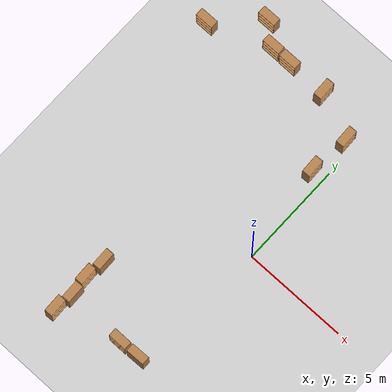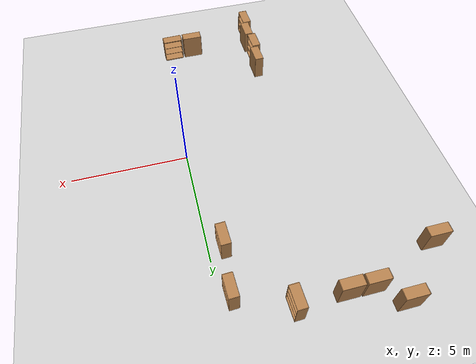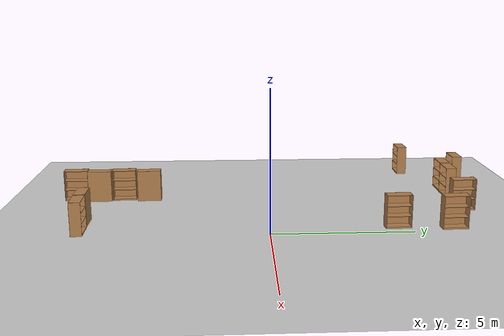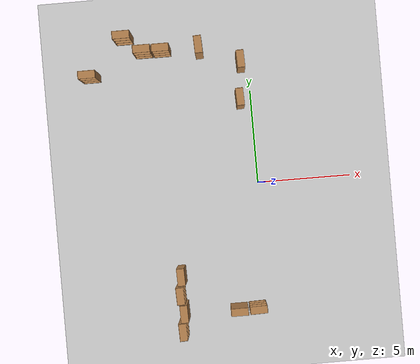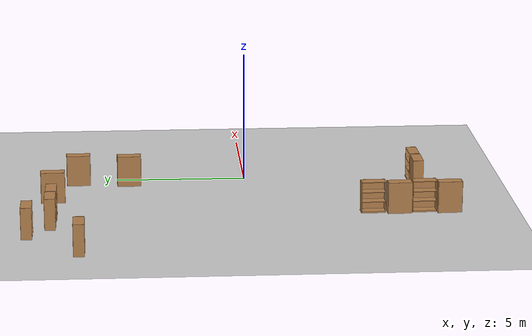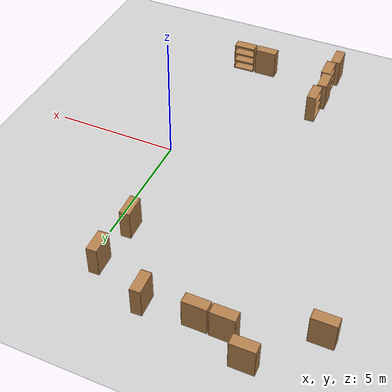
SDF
<sdf version="1.6">
 <world name="default">
  <model name="ground_plane">
   <static>1</static>
   <link name="link">
    <collision name="collision">
     <geometry><plane><normal>0 0 1</normal><size>100 100</size></plane></geometry>
     <surface>
      <contact><collide_bitmask>65535</collide_bitmask></contact>
      <friction><ode><mu>100</mu><mu2>50</mu2></ode></friction>
     </surface>
    </collision>
    <visual name="visual">
     <cast_shadows>0</cast_shadows>
     <geometry><plane><normal>0 0 1</normal><size>100 100</size></plane></geometry>
     <material>
      <script><uri>file://media/materials/scripts/gazebo.material</uri><name>Gazebo/Grey</name></script>
     </material>
    </visual>
   </link>
  </model>
  <model name="bookshelf_clone">
   <static>1</static>
   <link name="link">
    <inertial><mass>1</mass></inertial>
    <collision name="back">
     <pose>0 0.005 0.6 0 -0 0</pose>
     <geometry><box><size>0.9 0.01 1.2</size></box></geometry>
    </collision>
    <visual name="visual1">
     <pose>0 0.005 0.6 0 -0 0</pose>
     <geometry><box><size>0.9 0.01 1.2</size></box></geometry>
     <material>
      <script><uri>file://media/materials/scripts/gazebo.material</uri><name>Gazebo/Wood</name></script>
     </material>
    </visual>
    <collision name="left_side">
     <pose>0.45 -0.195 0.6 0 -0 0</pose>
     <geometry><box><size>0.02 0.4 1.2</size></box></geometry>
    </collision>
    <visual name="visual2">
     <pose>0.45 -0.195 0.6 0 -0 0</pose>
     <geometry><box><size>0.02 0.4 1.2</size></box></geometry>
     <material>
      <script><uri>file://media/materials/scripts/gazebo.material</uri><name>Gazebo/Wood</name></script>
     </material>
    </visual>
    <collision name="right_side">
     <pose>-0.45 -0.195 0.6 0 -0 0</pose>
     <geometry><box><size>0.02 0.4 1.2</size></box></geometry>
    </collision>
    <visual name="visual3">
     <pose>-0.45 -0.195 0.6 0 -0 0</pose>
     <geometry><box><size>0.02 0.4 1.2</size></box></geometry>
     <material>
      <script><uri>file://media/materials/scripts/gazebo.material</uri><name>Gazebo/Wood</name></script>
     </material>
    </visual>
    <collision name="bottom">
     <pose>0 -0.195 0.03 0 -0 0</pose>
     <geometry><box><size>0.88 0.4 0.06</size></box></geometry>
    </collision>
    <visual name="visual4">
     <pose>0 -0.195 0.03 0 -0 0</pose>
     <geometry><box><size>0.88 0.4 0.06</size></box></geometry>
     <material>
      <script><uri>file://media/materials/scripts/gazebo.material</uri><name>Gazebo/Wood</name></script>
     </material>
    </visual>
    <collision name="top">
     <pose>0 -0.195 1.19 0 -0 0</pose>
     <geometry><box><size>0.88 0.4 0.02</size></box></geometry>
    </collision>
    <visual name="visual5">
     <pose>0 -0.195 1.19 0 -0 0</pose>
     <geometry><box><size>0.88 0.4 0.02</size></box></geometry>
     <material>
      <script><uri>file://media/materials/scripts/gazebo.material</uri><name>Gazebo/Wood</name></script>
     </material>
    </visual>
    <collision name="low_shelf">
     <pose>0 -0.195 0.43 0 -0 0</pose>
     <geometry><box><size>0.88 0.4 0.02</size></box></geometry>
    </collision>
    <visual name="visual6">
     <pose>0 -0.195 0.43 0 -0 0</pose>
     <geometry><box><size>0.88 0.4 0.02</size></box></geometry>
     <material>
      <script><uri>file://media/materials/scripts/gazebo.material</uri><name>Gazebo/Wood</name></script>
     </material>
    </visual>
    <collision name="high_shelf">
     <pose>0 -0.195 0.8 0 -0 0</pose>
     <geometry><box><size>0.88 0.4 0.02</size></box></geometry>
    </collision>
    <visual name="visual7">
     <pose>0 -0.195 0.8 0 -0 0</pose>
     <geometry><box><size>0.88 0.4 0.02</size></box></geometry>
     <material>
      <script><uri>file://media/materials/scripts/gazebo.material</uri><name>Gazebo/Wood</name></script>
     </material>
    </visual>
   </link>
   <pose>-6.51968 8.44794 0 0 -0 0</pose>
  </model>
  <model name="bookshelf_clone_1">
   <static>1</static>
   <link name="link">
    <inertial><mass>1</mass></inertial>
    <collision name="back">
     <pose>0 0.005 0.6 0 -0 0</pose>
     <geometry><box><size>0.9 0.01 1.2</size></box></geometry>
    </collision>
    <visual name="visual1">
     <pose>0 0.005 0.6 0 -0 0</pose>
     <geometry><box><size>0.9 0.01 1.2</size></box></geometry>
     <material>
      <script><uri>file://media/materials/scripts/gazebo.material</uri><name>Gazebo/Wood</name></script>
     </material>
    </visual>
    <collision name="left_side">
     <pose>0.45 -0.195 0.6 0 -0 0</pose>
     <geometry><box><size>0.02 0.4 1.2</size></box></geometry>
    </collision>
    <visual name="visual2">
     <pose>0.45 -0.195 0.6 0 -0 0</pose>
     <geometry><box><size>0.02 0.4 1.2</size></box></geometry>
     <material>
      <script><uri>file://media/materials/scripts/gazebo.material</uri><name>Gazebo/Wood</name></script>
     </material>
    </visual>
    <collision name="right_side">
     <pose>-0.45 -0.195 0.6 0 -0 0</pose>
     <geometry><box><size>0.02 0.4 1.2</size></box></geometry>
    </collision>
    <visual name="visual3">
     <pose>-0.45 -0.195 0.6 0 -0 0</pose>
     <geometry><box><size>0.02 0.4 1.2</size></box></geometry>
     <material>
      <script><uri>file://media/materials/scripts/gazebo.material</uri><name>Gazebo/Wood</name></script>
     </material>
    </visual>
    <collision name="bottom">
     <pose>0 -0.195 0.03 0 -0 0</pose>
     <geometry><box><size>0.88 0.4 0.06</size></box></geometry>
    </collision>
    <visual name="visual4">
     <pose>0 -0.195 0.03 0 -0 0</pose>
     <geometry><box><size>0.88 0.4 0.06</size></box></geometry>
     <material>
      <script><uri>file://media/materials/scripts/gazebo.material</uri><name>Gazebo/Wood</name></script>
     </material>
    </visual>
    <collision name="top">
     <pose>0 -0.195 1.19 0 -0 0</pose>
     <geometry><box><size>0.88 0.4 0.02</size></box></geometry>
    </collision>
    <visual name="visual5">
     <pose>0 -0.195 1.19 0 -0 0</pose>
     <geometry><box><size>0.88 0.4 0.02</size></box></geometry>
     <material>
      <script><uri>file://media/materials/scripts/gazebo.material</uri><name>Gazebo/Wood</name></script>
     </material>
    </visual>
    <collision name="low_shelf">
     <pose>0 -0.195 0.43 0 -0 0</pose>
     <geometry><box><size>0.88 0.4 0.02</size></box></geometry>
    </collision>
    <visual name="visual6">
     <pose>0 -0.195 0.43 0 -0 0</pose>
     <geometry><box><size>0.88 0.4 0.02</size></box></geometry>
     <material>
      <script><uri>file://media/materials/scripts/gazebo.material</uri><name>Gazebo/Wood</name></script>
     </material>
    </visual>
    <collision name="high_shelf">
     <pose>0 -0.195 0.8 0 -0 0</pose>
     <geometry><box><size>0.88 0.4 0.02</size></box></geometry>
    </collision>
    <visual name="visual7">
     <pose>0 -0.195 0.8 0 -0 0</pose>
     <geometry><box><size>0.88 0.4 0.02</size></box></geometry>
     <material>
      <script><uri>file://media/materials/scripts/gazebo.material</uri><name>Gazebo/Wood</name></script>
     </material>
    </visual>
   </link>
   <pose>-5.52031 7.63228 0 0 -0 0</pose>
  </model>
  <model name="bookshelf_clone_2">
   <static>1</static>
   <link name="link">
    <inertial><mass>1</mass></inertial>
    <collision name="back">
     <pose>0 0.005 0.6 0 -0 0</pose>
     <geometry><box><size>0.9 0.01 1.2</size></box></geometry>
    </collision>
    <visual name="visual1">
     <pose>0 0.005 0.6 0 -0 0</pose>
     <geometry><box><size>0.9 0.01 1.2</size></box></geometry>
     <material>
      <script><uri>file://media/materials/scripts/gazebo.material</uri><name>Gazebo/Wood</name></script>
     </material>
    </visual>
    <collision name="left_side">
     <pose>0.45 -0.195 0.6 0 -0 0</pose>
     <geometry><box><size>0.02 0.4 1.2</size></box></geometry>
    </collision>
    <visual name="visual2">
     <pose>0.45 -0.195 0.6 0 -0 0</pose>
     <geometry><box><size>0.02 0.4 1.2</size></box></geometry>
     <material>
      <script><uri>file://media/materials/scripts/gazebo.material</uri><name>Gazebo/Wood</name></script>
     </material>
    </visual>
    <collision name="right_side">
     <pose>-0.45 -0.195 0.6 0 -0 0</pose>
     <geometry><box><size>0.02 0.4 1.2</size></box></geometry>
    </collision>
    <visual name="visual3">
     <pose>-0.45 -0.195 0.6 0 -0 0</pose>
     <geometry><box><size>0.02 0.4 1.2</size></box></geometry>
     <material>
      <script><uri>file://media/materials/scripts/gazebo.material</uri><name>Gazebo/Wood</name></script>
     </material>
    </visual>
    <collision name="bottom">
     <pose>0 -0.195 0.03 0 -0 0</pose>
     <geometry><box><size>0.88 0.4 0.06</size></box></geometry>
    </collision>
    <visual name="visual4">
     <pose>0 -0.195 0.03 0 -0 0</pose>
     <geometry><box><size>0.88 0.4 0.06</size></box></geometry>
     <material>
      <script><uri>file://media/materials/scripts/gazebo.material</uri><name>Gazebo/Wood</name></script>
     </material>
    </visual>
    <collision name="top">
     <pose>0 -0.195 1.19 0 -0 0</pose>
     <geometry><box><size>0.88 0.4 0.02</size></box></geometry>
    </collision>
    <visual name="visual5">
     <pose>0 -0.195 1.19 0 -0 0</pose>
     <geometry><box><size>0.88 0.4 0.02</size></box></geometry>
     <material>
      <script><uri>file://media/materials/scripts/gazebo.material</uri><name>Gazebo/Wood</name></script>
     </material>
    </visual>
    <collision name="low_shelf">
     <pose>0 -0.195 0.43 0 -0 0</pose>
     <geometry><box><size>0.88 0.4 0.02</size></box></geometry>
    </collision>
    <visual name="visual6">
     <pose>0 -0.195 0.43 0 -0 0</pose>
     <geometry><box><size>0.88 0.4 0.02</size></box></geometry>
     <material>
      <script><uri>file://media/materials/scripts/gazebo.material</uri><name>Gazebo/Wood</name></script>
     </material>
    </visual>
    <collision name="high_shelf">
     <pose>0 -0.195 0.8 0 -0 0</pose>
     <geometry><box><size>0.88 0.4 0.02</size></box></geometry>
    </collision>
    <visual name="visual7">
     <pose>0 -0.195 0.8 0 -0 0</pose>
     <geometry><box><size>0.88 0.4 0.02</size></box></geometry>
     <material>
      <script><uri>file://media/materials/scripts/gazebo.material</uri><name>Gazebo/Wood</name></script>
     </material>
    </visual>
   </link>
   <pose>-4.54568 7.61734 0 0 -0 0</pose>
  </model>
  <model name="bookshelf_clone_clone">
   <static>1</static>
   <link name="link">
    <inertial><mass>1</mass></inertial>
    <collision name="back">
     <pose>0 0.005 0.6 0 -0 0</pose>
     <geometry><box><size>0.9 0.01 1.2</size></box></geometry>
    </collision>
    <visual name="visual1">
     <pose>0 0.005 0.6 0 -0 0</pose>
     <geometry><box><size>0.9 0.01 1.2</size></box></geometry>
     <material>
      <script><uri>file://media/materials/scripts/gazebo.material</uri><name>Gazebo/Wood</name></script>
     </material>
    </visual>
    <collision name="left_side">
     <pose>0.45 -0.195 0.6 0 -0 0</pose>
     <geometry><box><size>0.02 0.4 1.2</size></box></geometry>
    </collision>
    <visual name="visual2">
     <pose>0.45 -0.195 0.6 0 -0 0</pose>
     <geometry><box><size>0.02 0.4 1.2</size></box></geometry>
     <material>
      <script><uri>file://media/materials/scripts/gazebo.material</uri><name>Gazebo/Wood</name></script>
     </material>
    </visual>
    <collision name="right_side">
     <pose>-0.45 -0.195 0.6 0 -0 0</pose>
     <geometry><box><size>0.02 0.4 1.2</size></box></geometry>
    </collision>
    <visual name="visual3">
     <pose>-0.45 -0.195 0.6 0 -0 0</pose>
     <geometry><box><size>0.02 0.4 1.2</size></box></geometry>
     <material>
      <script><uri>file://media/materials/scripts/gazebo.material</uri><name>Gazebo/Wood</name></script>
     </material>
    </visual>
    <collision name="bottom">
     <pose>0 -0.195 0.03 0 -0 0</pose>
     <geometry><box><size>0.88 0.4 0.06</size></box></geometry>
    </collision>
    <visual name="visual4">
     <pose>0 -0.195 0.03 0 -0 0</pose>
     <geometry><box><size>0.88 0.4 0.06</size></box></geometry>
     <material>
      <script><uri>file://media/materials/scripts/gazebo.material</uri><name>Gazebo/Wood</name></script>
     </material>
    </visual>
    <collision name="top">
     <pose>0 -0.195 1.19 0 -0 0</pose>
     <geometry><box><size>0.88 0.4 0.02</size></box></geometry>
    </collision>
    <visual name="visual5">
     <pose>0 -0.195 1.19 0 -0 0</pose>
     <geometry><box><size>0.88 0.4 0.02</size></box></geometry>
     <material>
      <script><uri>file://media/materials/scripts/gazebo.material</uri><name>Gazebo/Wood</name></script>
     </material>
    </visual>
    <collision name="low_shelf">
     <pose>0 -0.195 0.43 0 -0 0</pose>
     <geometry><box><size>0.88 0.4 0.02</size></box></geometry>
    </collision>
    <visual name="visual6">
     <pose>0 -0.195 0.43 0 -0 0</pose>
     <geometry><box><size>0.88 0.4 0.02</size></box></geometry>
     <material>
      <script><uri>file://media/materials/scripts/gazebo.material</uri><name>Gazebo/Wood</name></script>
     </material>
    </visual>
    <collision name="high_shelf">
     <pose>0 -0.195 0.8 0 -0 0</pose>
     <geometry><box><size>0.88 0.4 0.02</size></box></geometry>
    </collision>
    <visual name="visual7">
     <pose>0 -0.195 0.8 0 -0 0</pose>
     <geometry><box><size>0.88 0.4 0.02</size></box></geometry>
     <material>
      <script><uri>file://media/materials/scripts/gazebo.material</uri><name>Gazebo/Wood</name></script>
     </material>
    </visual>
   </link>
   <pose>-8.45784 6.53308 0 0 -0 0</pose>
  </model>
  <model name="bookshelf_clone_2_clone_clone">
   <static>1</static>
   <link name="link">
    <inertial><mass>1</mass></inertial>
    <collision name="back">
     <pose>0 0.005 0.6 0 -0 0</pose>
     <geometry><box><size>0.9 0.01 1.2</size></box></geometry>
    </collision>
    <visual name="visual1">
     <pose>0 0.005 0.6 0 -0 0</pose>
     <geometry><box><size>0.9 0.01 1.2</size></box></geometry>
     <material>
      <script><uri>file://media/materials/scripts/gazebo.material</uri><name>Gazebo/Wood</name></script>
     </material>
    </visual>
    <collision name="left_side">
     <pose>0.45 -0.195 0.6 0 -0 0</pose>
     <geometry><box><size>0.02 0.4 1.2</size></box></geometry>
    </collision>
    <visual name="visual2">
     <pose>0.45 -0.195 0.6 0 -0 0</pose>
     <geometry><box><size>0.02 0.4 1.2</size></box></geometry>
     <material>
      <script><uri>file://media/materials/scripts/gazebo.material</uri><name>Gazebo/Wood</name></script>
     </material>
    </visual>
    <collision name="right_side">
     <pose>-0.45 -0.195 0.6 0 -0 0</pose>
     <geometry><box><size>0.02 0.4 1.2</size></box></geometry>
    </collision>
    <visual name="visual3">
     <pose>-0.45 -0.195 0.6 0 -0 0</pose>
     <geometry><box><size>0.02 0.4 1.2</size></box></geometry>
     <material>
      <script><uri>file://media/materials/scripts/gazebo.material</uri><name>Gazebo/Wood</name></script>
     </material>
    </visual>
    <collision name="bottom">
     <pose>0 -0.195 0.03 0 -0 0</pose>
     <geometry><box><size>0.88 0.4 0.06</size></box></geometry>
    </collision>
    <visual name="visual4">
     <pose>0 -0.195 0.03 0 -0 0</pose>
     <geometry><box><size>0.88 0.4 0.06</size></box></geometry>
     <material>
      <script><uri>file://media/materials/scripts/gazebo.material</uri><name>Gazebo/Wood</name></script>
     </material>
    </visual>
    <collision name="top">
     <pose>0 -0.195 1.19 0 -0 0</pose>
     <geometry><box><size>0.88 0.4 0.02</size></box></geometry>
    </collision>
    <visual name="visual5">
     <pose>0 -0.195 1.19 0 -0 0</pose>
     <geometry><box><size>0.88 0.4 0.02</size></box></geometry>
     <material>
      <script><uri>file://media/materials/scripts/gazebo.material</uri><name>Gazebo/Wood</name></script>
     </material>
    </visual>
    <collision name="low_shelf">
     <pose>0 -0.195 0.43 0 -0 0</pose>
     <geometry><box><size>0.88 0.4 0.02</size></box></geometry>
    </collision>
    <visual name="visual6">
     <pose>0 -0.195 0.43 0 -0 0</pose>
     <geometry><box><size>0.88 0.4 0.02</size></box></geometry>
     <material>
      <script><uri>file://media/materials/scripts/gazebo.material</uri><name>Gazebo/Wood</name></script>
     </material>
    </visual>
    <collision name="high_shelf">
     <pose>0 -0.195 0.8 0 -0 0</pose>
     <geometry><box><size>0.88 0.4 0.02</size></box></geometry>
    </collision>
    <visual name="visual7">
     <pose>0 -0.195 0.8 0 -0 0</pose>
     <geometry><box><size>0.88 0.4 0.02</size></box></geometry>
     <material>
      <script><uri>file://media/materials/scripts/gazebo.material</uri><name>Gazebo/Wood</name></script>
     </material>
    </visual>
   </link>
   <pose>-0.615469 6.47904 0 0 -0 1.60567</pose>
  </model>
  <model name="bookshelf_clone_2_clone_clone_0">
   <static>1</static>
   <link name="link">
    <inertial><mass>1</mass></inertial>
    <collision name="back">
     <pose>0 0.005 0.6 0 -0 0</pose>
     <geometry><box><size>0.9 0.01 1.2</size></box></geometry>
    </collision>
    <visual name="visual1">
     <pose>0 0.005 0.6 0 -0 0</pose>
     <geometry><box><size>0.9 0.01 1.2</size></box></geometry>
     <material>
      <script><uri>file://media/materials/scripts/gazebo.material</uri><name>Gazebo/Wood</name></script>
     </material>
    </visual>
    <collision name="left_side">
     <pose>0.45 -0.195 0.6 0 -0 0</pose>
     <geometry><box><size>0.02 0.4 1.2</size></box></geometry>
    </collision>
    <visual name="visual2">
     <pose>0.45 -0.195 0.6 0 -0 0</pose>
     <geometry><box><size>0.02 0.4 1.2</size></box></geometry>
     <material>
      <script><uri>file://media/materials/scripts/gazebo.material</uri><name>Gazebo/Wood</name></script>
     </material>
    </visual>
    <collision name="right_side">
     <pose>-0.45 -0.195 0.6 0 -0 0</pose>
     <geometry><box><size>0.02 0.4 1.2</size></box></geometry>
    </collision>
    <visual name="visual3">
     <pose>-0.45 -0.195 0.6 0 -0 0</pose>
     <geometry><box><size>0.02 0.4 1.2</size></box></geometry>
     <material>
      <script><uri>file://media/materials/scripts/gazebo.material</uri><name>Gazebo/Wood</name></script>
     </material>
    </visual>
    <collision name="bottom">
     <pose>0 -0.195 0.03 0 -0 0</pose>
     <geometry><box><size>0.88 0.4 0.06</size></box></geometry>
    </collision>
    <visual name="visual4">
     <pose>0 -0.195 0.03 0 -0 0</pose>
     <geometry><box><size>0.88 0.4 0.06</size></box></geometry>
     <material>
      <script><uri>file://media/materials/scripts/gazebo.material</uri><name>Gazebo/Wood</name></script>
     </material>
    </visual>
    <collision name="top">
     <pose>0 -0.195 1.19 0 -0 0</pose>
     <geometry><box><size>0.88 0.4 0.02</size></box></geometry>
    </collision>
    <visual name="visual5">
     <pose>0 -0.195 1.19 0 -0 0</pose>
     <geometry><box><size>0.88 0.4 0.02</size></box></geometry>
     <material>
      <script><uri>file://media/materials/scripts/gazebo.material</uri><name>Gazebo/Wood</name></script>
     </material>
    </visual>
    <collision name="low_shelf">
     <pose>0 -0.195 0.43 0 -0 0</pose>
     <geometry><box><size>0.88 0.4 0.02</size></box></geometry>
    </collision>
    <visual name="visual6">
     <pose>0 -0.195 0.43 0 -0 0</pose>
     <geometry><box><size>0.88 0.4 0.02</size></box></geometry>
     <material>
      <script><uri>file://media/materials/scripts/gazebo.material</uri><name>Gazebo/Wood</name></script>
     </material>
    </visual>
    <collision name="high_shelf">
     <pose>0 -0.195 0.8 0 -0 0</pose>
     <geometry><box><size>0.88 0.4 0.02</size></box></geometry>
    </collision>
    <visual name="visual7">
     <pose>0 -0.195 0.8 0 -0 0</pose>
     <geometry><box><size>0.88 0.4 0.02</size></box></geometry>
     <material>
      <script><uri>file://media/materials/scripts/gazebo.material</uri><name>Gazebo/Wood</name></script>
     </material>
    </visual>
   </link>
   <pose>-0.805663 4.51678 0 0 -0 1.60567</pose>
  </model>
  <model name="bookshelf_clone_2_clone_clone_clone">
   <static>1</static>
   <link name="link">
    <inertial><mass>1</mass></inertial>
    <collision name="back">
     <pose>0 0.005 0.6 0 -0 0</pose>
     <geometry><box><size>0.9 0.01 1.2</size></box></geometry>
    </collision>
    <visual name="visual1">
     <pose>0 0.005 0.6 0 -0 0</pose>
     <geometry><box><size>0.9 0.01 1.2</size></box></geometry>
     <material>
      <script><uri>file://media/materials/scripts/gazebo.material</uri><name>Gazebo/Wood</name></script>
     </material>
    </visual>
    <collision name="left_side">
     <pose>0.45 -0.195 0.6 0 -0 0</pose>
     <geometry><box><size>0.02 0.4 1.2</size></box></geometry>
    </collision>
    <visual name="visual2">
     <pose>0.45 -0.195 0.6 0 -0 0</pose>
     <geometry><box><size>0.02 0.4 1.2</size></box></geometry>
     <material>
      <script><uri>file://media/materials/scripts/gazebo.material</uri><name>Gazebo/Wood</name></script>
     </material>
    </visual>
    <collision name="right_side">
     <pose>-0.45 -0.195 0.6 0 -0 0</pose>
     <geometry><box><size>0.02 0.4 1.2</size></box></geometry>
    </collision>
    <visual name="visual3">
     <pose>-0.45 -0.195 0.6 0 -0 0</pose>
     <geometry><box><size>0.02 0.4 1.2</size></box></geometry>
     <material>
      <script><uri>file://media/materials/scripts/gazebo.material</uri><name>Gazebo/Wood</name></script>
     </material>
    </visual>
    <collision name="bottom">
     <pose>0 -0.195 0.03 0 -0 0</pose>
     <geometry><box><size>0.88 0.4 0.06</size></box></geometry>
    </collision>
    <visual name="visual4">
     <pose>0 -0.195 0.03 0 -0 0</pose>
     <geometry><box><size>0.88 0.4 0.06</size></box></geometry>
     <material>
      <script><uri>file://media/materials/scripts/gazebo.material</uri><name>Gazebo/Wood</name></script>
     </material>
    </visual>
    <collision name="top">
     <pose>0 -0.195 1.19 0 -0 0</pose>
     <geometry><box><size>0.88 0.4 0.02</size></box></geometry>
    </collision>
    <visual name="visual5">
     <pose>0 -0.195 1.19 0 -0 0</pose>
     <geometry><box><size>0.88 0.4 0.02</size></box></geometry>
     <material>
      <script><uri>file://media/materials/scripts/gazebo.material</uri><name>Gazebo/Wood</name></script>
     </material>
    </visual>
    <collision name="low_shelf">
     <pose>0 -0.195 0.43 0 -0 0</pose>
     <geometry><box><size>0.88 0.4 0.02</size></box></geometry>
    </collision>
    <visual name="visual6">
     <pose>0 -0.195 0.43 0 -0 0</pose>
     <geometry><box><size>0.88 0.4 0.02</size></box></geometry>
     <material>
      <script><uri>file://media/materials/scripts/gazebo.material</uri><name>Gazebo/Wood</name></script>
     </material>
    </visual>
    <collision name="high_shelf">
     <pose>0 -0.195 0.8 0 -0 0</pose>
     <geometry><box><size>0.88 0.4 0.02</size></box></geometry>
    </collision>
    <visual name="visual7">
     <pose>0 -0.195 0.8 0 -0 0</pose>
     <geometry><box><size>0.88 0.4 0.02</size></box></geometry>
     <material>
      <script><uri>file://media/materials/scripts/gazebo.material</uri><name>Gazebo/Wood</name></script>
     </material>
    </visual>
   </link>
   <pose>-2.75745 7.41263 0 0 -0 1.60567</pose>
  </model>
  <model name="bookshelf_clone_clone_0_clone_0">
   <static>1</static>
   <link name="link">
    <inertial><mass>1</mass></inertial>
    <collision name="back">
     <pose>0 0.005 0.6 0 -0 0</pose>
     <geometry><box><size>0.9 0.01 1.2</size></box></geometry>
    </collision>
    <visual name="visual1">
     <pose>0 0.005 0.6 0 -0 0</pose>
     <geometry><box><size>0.9 0.01 1.2</size></box></geometry>
     <material>
      <script><uri>file://media/materials/scripts/gazebo.material</uri><name>Gazebo/Wood</name></script>
     </material>
    </visual>
    <collision name="left_side">
     <pose>0.45 -0.195 0.6 0 -0 0</pose>
     <geometry><box><size>0.02 0.4 1.2</size></box></geometry>
    </collision>
    <visual name="visual2">
     <pose>0.45 -0.195 0.6 0 -0 0</pose>
     <geometry><box><size>0.02 0.4 1.2</size></box></geometry>
     <material>
      <script><uri>file://media/materials/scripts/gazebo.material</uri><name>Gazebo/Wood</name></script>
     </material>
    </visual>
    <collision name="right_side">
     <pose>-0.45 -0.195 0.6 0 -0 0</pose>
     <geometry><box><size>0.02 0.4 1.2</size></box></geometry>
    </collision>
    <visual name="visual3">
     <pose>-0.45 -0.195 0.6 0 -0 0</pose>
     <geometry><box><size>0.02 0.4 1.2</size></box></geometry>
     <material>
      <script><uri>file://media/materials/scripts/gazebo.material</uri><name>Gazebo/Wood</name></script>
     </material>
    </visual>
    <collision name="bottom">
     <pose>0 -0.195 0.03 0 -0 0</pose>
     <geometry><box><size>0.88 0.4 0.06</size></box></geometry>
    </collision>
    <visual name="visual4">
     <pose>0 -0.195 0.03 0 -0 0</pose>
     <geometry><box><size>0.88 0.4 0.06</size></box></geometry>
     <material>
      <script><uri>file://media/materials/scripts/gazebo.material</uri><name>Gazebo/Wood</name></script>
     </material>
    </visual>
    <collision name="top">
     <pose>0 -0.195 1.19 0 -0 0</pose>
     <geometry><box><size>0.88 0.4 0.02</size></box></geometry>
    </collision>
    <visual name="visual5">
     <pose>0 -0.195 1.19 0 -0 0</pose>
     <geometry><box><size>0.88 0.4 0.02</size></box></geometry>
     <material>
      <script><uri>file://media/materials/scripts/gazebo.material</uri><name>Gazebo/Wood</name></script>
     </material>
    </visual>
    <collision name="low_shelf">
     <pose>0 -0.195 0.43 0 -0 0</pose>
     <geometry><box><size>0.88 0.4 0.02</size></box></geometry>
    </collision>
    <visual name="visual6">
     <pose>0 -0.195 0.43 0 -0 0</pose>
     <geometry><box><size>0.88 0.4 0.02</size></box></geometry>
     <material>
      <script><uri>file://media/materials/scripts/gazebo.material</uri><name>Gazebo/Wood</name></script>
     </material>
    </visual>
    <collision name="high_shelf">
     <pose>0 -0.195 0.8 0 -0 0</pose>
     <geometry><box><size>0.88 0.4 0.02</size></box></geometry>
    </collision>
    <visual name="visual7">
     <pose>0 -0.195 0.8 0 -0 0</pose>
     <geometry><box><size>0.88 0.4 0.02</size></box></geometry>
     <material>
      <script><uri>file://media/materials/scripts/gazebo.material</uri><name>Gazebo/Wood</name></script>
     </material>
    </visual>
   </link>
   <pose>-0.566573 -6.7817 0 0 0 -3.11719</pose>
  </model>
  <model name="bookshelf_clone_2_clone_clone_3">
   <static>1</static>
   <link name="link">
    <inertial><mass>1</mass></inertial>
    <collision name="back">
     <pose>0 0.005 0.6 0 -0 0</pose>
     <geometry><box><size>0.9 0.01 1.2</size></box></geometry>
    </collision>
    <visual name="visual1">
     <pose>0 0.005 0.6 0 -0 0</pose>
     <geometry><box><size>0.9 0.01 1.2</size></box></geometry>
     <material>
      <script><uri>file://media/materials/scripts/gazebo.material</uri><name>Gazebo/Wood</name></script>
     </material>
    </visual>
    <collision name="left_side">
     <pose>0.45 -0.195 0.6 0 -0 0</pose>
     <geometry><box><size>0.02 0.4 1.2</size></box></geometry>
    </collision>
    <visual name="visual2">
     <pose>0.45 -0.195 0.6 0 -0 0</pose>
     <geometry><box><size>0.02 0.4 1.2</size></box></geometry>
     <material>
      <script><uri>file://media/materials/scripts/gazebo.material</uri><name>Gazebo/Wood</name></script>
     </material>
    </visual>
    <collision name="right_side">
     <pose>-0.45 -0.195 0.6 0 -0 0</pose>
     <geometry><box><size>0.02 0.4 1.2</size></box></geometry>
    </collision>
    <visual name="visual3">
     <pose>-0.45 -0.195 0.6 0 -0 0</pose>
     <geometry><box><size>0.02 0.4 1.2</size></box></geometry>
     <material>
      <script><uri>file://media/materials/scripts/gazebo.material</uri><name>Gazebo/Wood</name></script>
     </material>
    </visual>
    <collision name="bottom">
     <pose>0 -0.195 0.03 0 -0 0</pose>
     <geometry><box><size>0.88 0.4 0.06</size></box></geometry>
    </collision>
    <visual name="visual4">
     <pose>0 -0.195 0.03 0 -0 0</pose>
     <geometry><box><size>0.88 0.4 0.06</size></box></geometry>
     <material>
      <script><uri>file://media/materials/scripts/gazebo.material</uri><name>Gazebo/Wood</name></script>
     </material>
    </visual>
    <collision name="top">
     <pose>0 -0.195 1.19 0 -0 0</pose>
     <geometry><box><size>0.88 0.4 0.02</size></box></geometry>
    </collision>
    <visual name="visual5">
     <pose>0 -0.195 1.19 0 -0 0</pose>
     <geometry><box><size>0.88 0.4 0.02</size></box></geometry>
     <material>
      <script><uri>file://media/materials/scripts/gazebo.material</uri><name>Gazebo/Wood</name></script>
     </material>
    </visual>
    <collision name="low_shelf">
     <pose>0 -0.195 0.43 0 -0 0</pose>
     <geometry><box><size>0.88 0.4 0.02</size></box></geometry>
    </collision>
    <visual name="visual6">
     <pose>0 -0.195 0.43 0 -0 0</pose>
     <geometry><box><size>0.88 0.4 0.02</size></box></geometry>
     <material>
      <script><uri>file://media/materials/scripts/gazebo.material</uri><name>Gazebo/Wood</name></script>
     </material>
    </visual>
    <collision name="high_shelf">
     <pose>0 -0.195 0.8 0 -0 0</pose>
     <geometry><box><size>0.88 0.4 0.02</size></box></geometry>
    </collision>
    <visual name="visual7">
     <pose>0 -0.195 0.8 0 -0 0</pose>
     <geometry><box><size>0.88 0.4 0.02</size></box></geometry>
     <material>
      <script><uri>file://media/materials/scripts/gazebo.material</uri><name>Gazebo/Wood</name></script>
     </material>
    </visual>
   </link>
   <pose>-1.56739 -6.42063 0 0 -0 0</pose>
  </model>
  <model name="bookshelf_clone_2_clone_clone_2_clone_2">
   <static>1</static>
   <link name="link">
    <inertial><mass>1</mass></inertial>
    <collision name="back">
     <pose>0 0.005 0.6 0 -0 0</pose>
     <geometry><box><size>0.9 0.01 1.2</size></box></geometry>
    </collision>
    <visual name="visual1">
     <pose>0 0.005 0.6 0 -0 0</pose>
     <geometry><box><size>0.9 0.01 1.2</size></box></geometry>
     <material>
      <script><uri>file://media/materials/scripts/gazebo.material</uri><name>Gazebo/Wood</name></script>
     </material>
    </visual>
    <collision name="left_side">
     <pose>0.45 -0.195 0.6 0 -0 0</pose>
     <geometry><box><size>0.02 0.4 1.2</size></box></geometry>
    </collision>
    <visual name="visual2">
     <pose>0.45 -0.195 0.6 0 -0 0</pose>
     <geometry><box><size>0.02 0.4 1.2</size></box></geometry>
     <material>
      <script><uri>file://media/materials/scripts/gazebo.material</uri><name>Gazebo/Wood</name></script>
     </material>
    </visual>
    <collision name="right_side">
     <pose>-0.45 -0.195 0.6 0 -0 0</pose>
     <geometry><box><size>0.02 0.4 1.2</size></box></geometry>
    </collision>
    <visual name="visual3">
     <pose>-0.45 -0.195 0.6 0 -0 0</pose>
     <geometry><box><size>0.02 0.4 1.2</size></box></geometry>
     <material>
      <script><uri>file://media/materials/scripts/gazebo.material</uri><name>Gazebo/Wood</name></script>
     </material>
    </visual>
    <collision name="bottom">
     <pose>0 -0.195 0.03 0 -0 0</pose>
     <geometry><box><size>0.88 0.4 0.06</size></box></geometry>
    </collision>
    <visual name="visual4">
     <pose>0 -0.195 0.03 0 -0 0</pose>
     <geometry><box><size>0.88 0.4 0.06</size></box></geometry>
     <material>
      <script><uri>file://media/materials/scripts/gazebo.material</uri><name>Gazebo/Wood</name></script>
     </material>
    </visual>
    <collision name="top">
     <pose>0 -0.195 1.19 0 -0 0</pose>
     <geometry><box><size>0.88 0.4 0.02</size></box></geometry>
    </collision>
    <visual name="visual5">
     <pose>0 -0.195 1.19 0 -0 0</pose>
     <geometry><box><size>0.88 0.4 0.02</size></box></geometry>
     <material>
      <script><uri>file://media/materials/scripts/gazebo.material</uri><name>Gazebo/Wood</name></script>
     </material>
    </visual>
    <collision name="low_shelf">
     <pose>0 -0.195 0.43 0 -0 0</pose>
     <geometry><box><size>0.88 0.4 0.02</size></box></geometry>
    </collision>
    <visual name="visual6">
     <pose>0 -0.195 0.43 0 -0 0</pose>
     <geometry><box><size>0.88 0.4 0.02</size></box></geometry>
     <material>
      <script><uri>file://media/materials/scripts/gazebo.material</uri><name>Gazebo/Wood</name></script>
     </material>
    </visual>
    <collision name="high_shelf">
     <pose>0 -0.195 0.8 0 -0 0</pose>
     <geometry><box><size>0.88 0.4 0.02</size></box></geometry>
    </collision>
    <visual name="visual7">
     <pose>0 -0.195 0.8 0 -0 0</pose>
     <geometry><box><size>0.88 0.4 0.02</size></box></geometry>
     <material>
      <script><uri>file://media/materials/scripts/gazebo.material</uri><name>Gazebo/Wood</name></script>
     </material>
    </visual>
   </link>
   <pose>-4.27296 -4.55681 0 0 0 -1.54502</pose>
  </model>
  <model name="bookshelf_clone_2_clone_clone_2_clone_5">
   <static>1</static>
   <link name="link">
    <inertial><mass>1</mass></inertial>
    <collision name="back">
     <pose>0 0.005 0.6 0 -0 0</pose>
     <geometry><box><size>0.9 0.01 1.2</size></box></geometry>
    </collision>
    <visual name="visual1">
     <pose>0 0.005 0.6 0 -0 0</pose>
     <geometry><box><size>0.9 0.01 1.2</size></box></geometry>
     <material>
      <script><uri>file://media/materials/scripts/gazebo.material</uri><name>Gazebo/Wood</name></script>
     </material>
    </visual>
    <collision name="left_side">
     <pose>0.45 -0.195 0.6 0 -0 0</pose>
     <geometry><box><size>0.02 0.4 1.2</size></box></geometry>
    </collision>
    <visual name="visual2">
     <pose>0.45 -0.195 0.6 0 -0 0</pose>
     <geometry><box><size>0.02 0.4 1.2</size></box></geometry>
     <material>
      <script><uri>file://media/materials/scripts/gazebo.material</uri><name>Gazebo/Wood</name></script>
     </material>
    </visual>
    <collision name="right_side">
     <pose>-0.45 -0.195 0.6 0 -0 0</pose>
     <geometry><box><size>0.02 0.4 1.2</size></box></geometry>
    </collision>
    <visual name="visual3">
     <pose>-0.45 -0.195 0.6 0 -0 0</pose>
     <geometry><box><size>0.02 0.4 1.2</size></box></geometry>
     <material>
      <script><uri>file://media/materials/scripts/gazebo.material</uri><name>Gazebo/Wood</name></script>
     </material>
    </visual>
    <collision name="bottom">
     <pose>0 -0.195 0.03 0 -0 0</pose>
     <geometry><box><size>0.88 0.4 0.06</size></box></geometry>
    </collision>
    <visual name="visual4">
     <pose>0 -0.195 0.03 0 -0 0</pose>
     <geometry><box><size>0.88 0.4 0.06</size></box></geometry>
     <material>
      <script><uri>file://media/materials/scripts/gazebo.material</uri><name>Gazebo/Wood</name></script>
     </material>
    </visual>
    <collision name="top">
     <pose>0 -0.195 1.19 0 -0 0</pose>
     <geometry><box><size>0.88 0.4 0.02</size></box></geometry>
    </collision>
    <visual name="visual5">
     <pose>0 -0.195 1.19 0 -0 0</pose>
     <geometry><box><size>0.88 0.4 0.02</size></box></geometry>
     <material>
      <script><uri>file://media/materials/scripts/gazebo.material</uri><name>Gazebo/Wood</name></script>
     </material>
    </visual>
    <collision name="low_shelf">
     <pose>0 -0.195 0.43 0 -0 0</pose>
     <geometry><box><size>0.88 0.4 0.02</size></box></geometry>
    </collision>
    <visual name="visual6">
     <pose>0 -0.195 0.43 0 -0 0</pose>
     <geometry><box><size>0.88 0.4 0.02</size></box></geometry>
     <material>
      <script><uri>file://media/materials/scripts/gazebo.material</uri><name>Gazebo/Wood</name></script>
     </material>
    </visual>
    <collision name="high_shelf">
     <pose>0 -0.195 0.8 0 -0 0</pose>
     <geometry><box><size>0.88 0.4 0.02</size></box></geometry>
    </collision>
    <visual name="visual7">
     <pose>0 -0.195 0.8 0 -0 0</pose>
     <geometry><box><size>0.88 0.4 0.02</size></box></geometry>
     <material>
      <script><uri>file://media/materials/scripts/gazebo.material</uri><name>Gazebo/Wood</name></script>
     </material>
    </visual>
   </link>
   <pose>-4.26616 -6.48044 0 0 0 -1.54502</pose>
  </model>
  <model name="bookshelf_clone_2_clone_clone_clone_clone">
   <static>1</static>
   <link name="link">
    <inertial><mass>1</mass></inertial>
    <collision name="back">
     <pose>0 0.005 0.6 0 -0 0</pose>
     <geometry><box><size>0.9 0.01 1.2</size></box></geometry>
    </collision>
    <visual name="visual1">
     <pose>0 0.005 0.6 0 -0 0</pose>
     <geometry><box><size>0.9 0.01 1.2</size></box></geometry>
     <material>
      <script><uri>file://media/materials/scripts/gazebo.material</uri><name>Gazebo/Wood</name></script>
     </material>
    </visual>
    <collision name="left_side">
     <pose>0.45 -0.195 0.6 0 -0 0</pose>
     <geometry><box><size>0.02 0.4 1.2</size></box></geometry>
    </collision>
    <visual name="visual2">
     <pose>0.45 -0.195 0.6 0 -0 0</pose>
     <geometry><box><size>0.02 0.4 1.2</size></box></geometry>
     <material>
      <script><uri>file://media/materials/scripts/gazebo.material</uri><name>Gazebo/Wood</name></script>
     </material>
    </visual>
    <collision name="right_side">
     <pose>-0.45 -0.195 0.6 0 -0 0</pose>
     <geometry><box><size>0.02 0.4 1.2</size></box></geometry>
    </collision>
    <visual name="visual3">
     <pose>-0.45 -0.195 0.6 0 -0 0</pose>
     <geometry><box><size>0.02 0.4 1.2</size></box></geometry>
     <material>
      <script><uri>file://media/materials/scripts/gazebo.material</uri><name>Gazebo/Wood</name></script>
     </material>
    </visual>
    <collision name="bottom">
     <pose>0 -0.195 0.03 0 -0 0</pose>
     <geometry><box><size>0.88 0.4 0.06</size></box></geometry>
    </collision>
    <visual name="visual4">
     <pose>0 -0.195 0.03 0 -0 0</pose>
     <geometry><box><size>0.88 0.4 0.06</size></box></geometry>
     <material>
      <script><uri>file://media/materials/scripts/gazebo.material</uri><name>Gazebo/Wood</name></script>
     </material>
    </visual>
    <collision name="top">
     <pose>0 -0.195 1.19 0 -0 0</pose>
     <geometry><box><size>0.88 0.4 0.02</size></box></geometry>
    </collision>
    <visual name="visual5">
     <pose>0 -0.195 1.19 0 -0 0</pose>
     <geometry><box><size>0.88 0.4 0.02</size></box></geometry>
     <material>
      <script><uri>file://media/materials/scripts/gazebo.material</uri><name>Gazebo/Wood</name></script>
     </material>
    </visual>
    <collision name="low_shelf">
     <pose>0 -0.195 0.43 0 -0 0</pose>
     <geometry><box><size>0.88 0.4 0.02</size></box></geometry>
    </collision>
    <visual name="visual6">
     <pose>0 -0.195 0.43 0 -0 0</pose>
     <geometry><box><size>0.88 0.4 0.02</size></box></geometry>
     <material>
      <script><uri>file://media/materials/scripts/gazebo.material</uri><name>Gazebo/Wood</name></script>
     </material>
    </visual>
    <collision name="high_shelf">
     <pose>0 -0.195 0.8 0 -0 0</pose>
     <geometry><box><size>0.88 0.4 0.02</size></box></geometry>
    </collision>
    <visual name="visual7">
     <pose>0 -0.195 0.8 0 -0 0</pose>
     <geometry><box><size>0.88 0.4 0.02</size></box></geometry>
     <material>
      <script><uri>file://media/materials/scripts/gazebo.material</uri><name>Gazebo/Wood</name></script>
     </material>
    </visual>
   </link>
   <pose>-4.78027 -5.54901 0 0 -0 1.60567</pose>
  </model>
  <model name="bookshelf_clone_2_clone_clone_clone_clone_0">
   <static>1</static>
   <link name="link">
    <inertial><mass>1</mass></inertial>
    <collision name="back">
     <pose>0 0.005 0.6 0 -0 0</pose>
     <geometry><box><size>0.9 0.01 1.2</size></box></geometry>
    </collision>
    <visual name="visual1">
     <pose>0 0.005 0.6 0 -0 0</pose>
     <geometry><box><size>0.9 0.01 1.2</size></box></geometry>
     <material>
      <script><uri>file://media/materials/scripts/gazebo.material</uri><name>Gazebo/Wood</name></script>
     </material>
    </visual>
    <collision name="left_side">
     <pose>0.45 -0.195 0.6 0 -0 0</pose>
     <geometry><box><size>0.02 0.4 1.2</size></box></geometry>
    </collision>
    <visual name="visual2">
     <pose>0.45 -0.195 0.6 0 -0 0</pose>
     <geometry><box><size>0.02 0.4 1.2</size></box></geometry>
     <material>
      <script><uri>file://media/materials/scripts/gazebo.material</uri><name>Gazebo/Wood</name></script>
     </material>
    </visual>
    <collision name="right_side">
     <pose>-0.45 -0.195 0.6 0 -0 0</pose>
     <geometry><box><size>0.02 0.4 1.2</size></box></geometry>
    </collision>
    <visual name="visual3">
     <pose>-0.45 -0.195 0.6 0 -0 0</pose>
     <geometry><box><size>0.02 0.4 1.2</size></box></geometry>
     <material>
      <script><uri>file://media/materials/scripts/gazebo.material</uri><name>Gazebo/Wood</name></script>
     </material>
    </visual>
    <collision name="bottom">
     <pose>0 -0.195 0.03 0 -0 0</pose>
     <geometry><box><size>0.88 0.4 0.06</size></box></geometry>
    </collision>
    <visual name="visual4">
     <pose>0 -0.195 0.03 0 -0 0</pose>
     <geometry><box><size>0.88 0.4 0.06</size></box></geometry>
     <material>
      <script><uri>file://media/materials/scripts/gazebo.material</uri><name>Gazebo/Wood</name></script>
     </material>
    </visual>
    <collision name="top">
     <pose>0 -0.195 1.19 0 -0 0</pose>
     <geometry><box><size>0.88 0.4 0.02</size></box></geometry>
    </collision>
    <visual name="visual5">
     <pose>0 -0.195 1.19 0 -0 0</pose>
     <geometry><box><size>0.88 0.4 0.02</size></box></geometry>
     <material>
      <script><uri>file://media/materials/scripts/gazebo.material</uri><name>Gazebo/Wood</name></script>
     </material>
    </visual>
    <collision name="low_shelf">
     <pose>0 -0.195 0.43 0 -0 0</pose>
     <geometry><box><size>0.88 0.4 0.02</size></box></geometry>
    </collision>
    <visual name="visual6">
     <pose>0 -0.195 0.43 0 -0 0</pose>
     <geometry><box><size>0.88 0.4 0.02</size></box></geometry>
     <material>
      <script><uri>file://media/materials/scripts/gazebo.material</uri><name>Gazebo/Wood</name></script>
     </material>
    </visual>
    <collision name="high_shelf">
     <pose>0 -0.195 0.8 0 -0 0</pose>
     <geometry><box><size>0.88 0.4 0.02</size></box></geometry>
    </collision>
    <visual name="visual7">
     <pose>0 -0.195 0.8 0 -0 0</pose>
     <geometry><box><size>0.88 0.4 0.02</size></box></geometry>
     <material>
      <script><uri>file://media/materials/scripts/gazebo.material</uri><name>Gazebo/Wood</name></script>
     </material>
    </visual>
   </link>
   <pose>-4.78835 -7.42559 0 0 -0 1.60567</pose>
  </model>
 </world>
</sdf>
